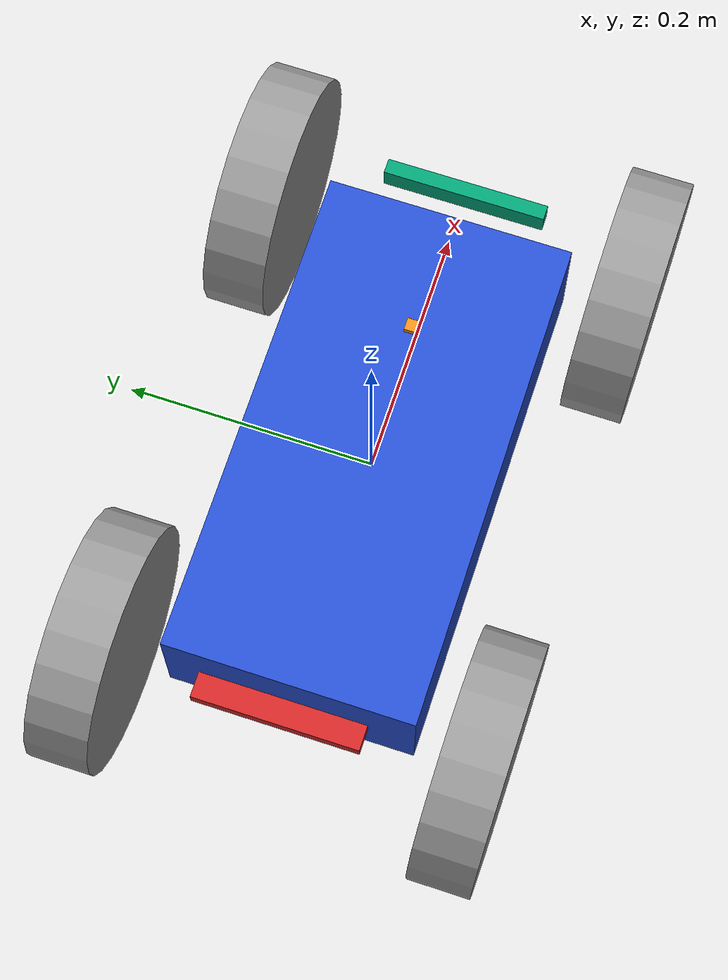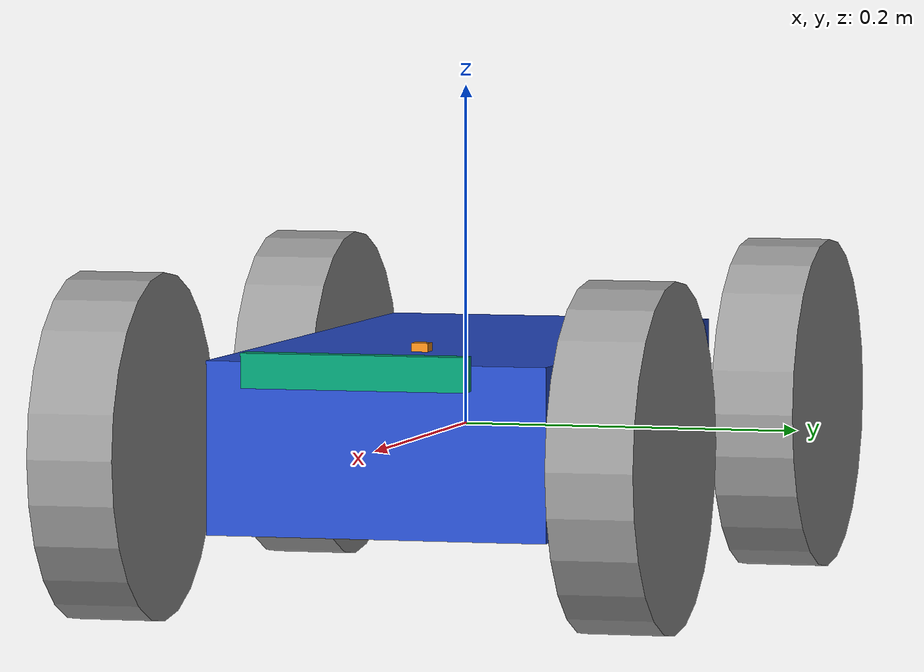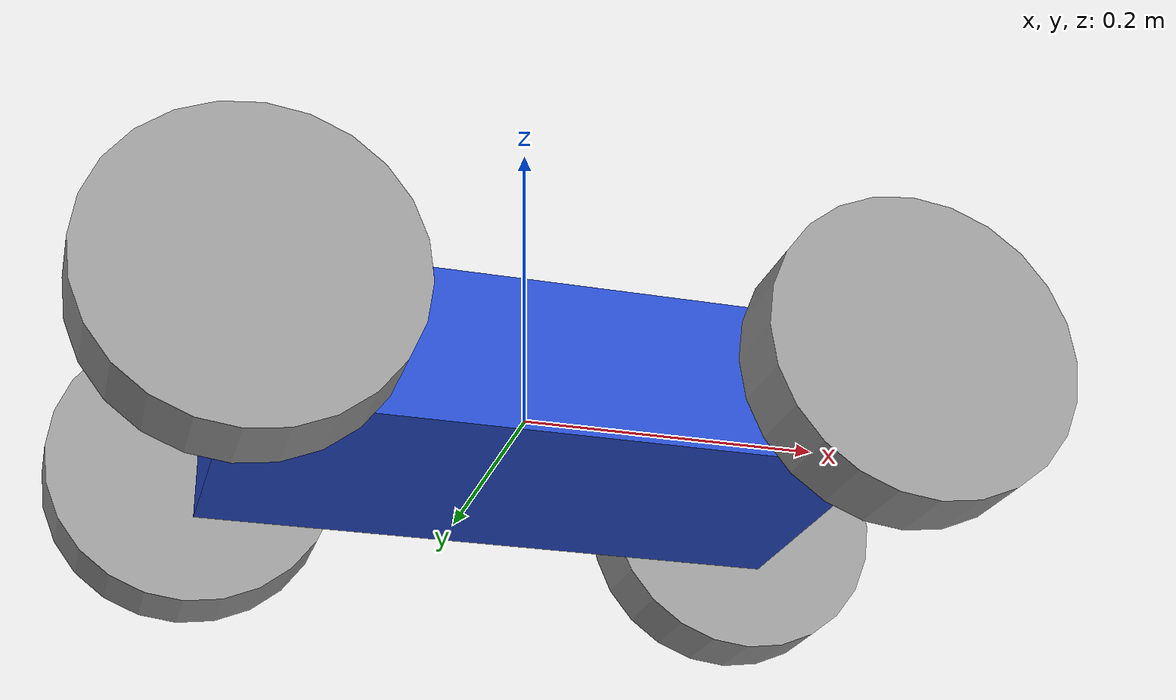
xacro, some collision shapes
<?xml version='1.0'?>

<robot name="fbrobot" xmlns:xacro="http://www.ros.org/wiki/xacro">

  <xacro:include filename="$(find fb_description)/urdf/fb.gazebo" />
  <xacro:include filename="$(find fb_description)/urdf/materials.xacro" />
  <!--xacro:include filename="$(find mybot_description)/urdf/macros.xacro" /-->
 <xacro:property name="r200_cam_rgb_px" value="0.05"/>
  <xacro:property name="r200_cam_rgb_py" value="0.018"/>
  <xacro:property name="r200_cam_rgb_pz" value="0.013"/>
  <xacro:property name="r200_cam_depth_offset" value="0.01"/>

  <link name='chassis'>
    <pose>0 0 0.1 0 0 0</pose>
    <inertial>
      <mass value="10.0"/>
      <origin xyz="0.0 0 0.1" rpy=" 0 0 0"/>
      <inertia
          ixx="0.5" ixy="0" ixz="0"
          iyy="1.0" iyz="0"
          izz="0.1"
      />
    </inertial>

    <collision name='collision'>
      <geometry>
        <box size=".4 .2 .1"/>
      </geometry>
    </collision>

    <visual name='chassis_visual'>
      <origin xyz="0 0 0" rpy=" 0 0 0"/>
      <geometry>
        <box size=".4 .2 .1"/>
      </geometry>
    </visual>

  </link>

  <link name="left_wheel">
    <!--origin xyz="0.1 0.13 0.1" rpy="0 1.5707 1.5707"/-->
    <collision name="collision">
      <origin xyz="0 0 0" rpy="0 1.5707 1.5707"/>
      <geometry>
        <cylinder radius="0.1" length="0.05"/>
      </geometry>
    </collision>
    <visual name="left_wheel_visual">
      <origin xyz="0 0 0" rpy="0 1.5707 1.5707"/>
      <geometry>
        <cylinder radius="0.1" length="0.05"/>
      </geometry>
    </visual>
    <inertial>
      <origin xyz="0 0 0" rpy="0 1.5707 1.5707"/>
      <mass value="5"/>
      <cylinder_inertia m="5" r="0.1" h="0.05"/>
      <inertia
        ixx="1.0" ixy="0.0" ixz="0.0"
        iyy="1.0" iyz="0.0"
        izz="1.0"/>
    </inertial>
  </link>
   <joint name="camera_joint" type="fixed">
    <origin xyz="0.22 -0.07 0.04" rpy="0 0 0"/>
    <parent link="chassis"/>
    <child link="camera_link"/>
</joint>
   <joint name="camera_back_joint" type="fixed">
    <origin xyz="-0.22 0.0 0.04" rpy="0 0 -3.14"/>
    <parent link="chassis"/>
    <child link="camera_back_link"/>
</joint>

  <link name="camera_link">
    <visual>
     <origin xyz="0 0 0" rpy="1.57 0 1.57"/>
      <geometry>
       <mesh filename="$(find fb_description)/urdf/r200.dae"/>
      </geometry>
    </visual>
    <collision>
      <origin xyz="0.003 0.065 0.007" rpy="0 0 0"/>
      <geometry>
        <box size="0.012 0.132 0.020"/>
      </geometry>
    </collision>

    <!-- This inertial field needs doesn't contain reliable data!! -->
  </link>
  <link name="camera_back_link">
    <visual>
     <origin xyz="0 0 0" rpy="1.57 1.57 1.57"/>
     <geometry>
        <box size="0.012 0.132 0.020"/>
      </geometry>
   </visual>
    <collision>
      <origin xyz="0.003 0.065 0.007" rpy="0 0 0"/>
      <geometry>
        <box size="0.012 0.132 0.020"/>
      </geometry>
    </collision>

    <!-- This inertial field needs doesn't contain reliable data!! -->
  </link>

  <joint name="camera_rgb_joint" type="fixed">
    <origin xyz="${r200_cam_rgb_px} ${r200_cam_rgb_py} ${r200_cam_rgb_pz}" rpy="0 0 0"/>
    <parent link="camera_link"/>
    <child link="camera_rgb_frame"/>
  </joint>
  <link name="camera_rgb_frame"/>

  <joint name="camera_rgb_optical_joint" type="fixed">
    <origin xyz="0 0 0" rpy="-1.57 0 -1.57"/>
    <parent link="camera_rgb_frame"/>
    <child link="camera_rgb_optical_frame"/>
  </joint>
  <link name="camera_rgb_optical_frame"/>

  <joint name="camera_depth_joint" type="fixed">
    <origin xyz="${r200_cam_rgb_px} ${r200_cam_rgb_py + r200_cam_depth_offset} ${r200_cam_rgb_pz}" rpy="0 0 0"/>
    <parent link="camera_link"/>
    <child link="camera_depth_frame"/>
  </joint>
  <link name="camera_depth_frame"/>

  <joint name="camera_depth_optical_joint" type="fixed">
    <origin xyz="0 0 0" rpy="-1.57 0 -1.57"/>
    <parent link="camera_depth_frame"/>
    <child link="camera_depth_optical_frame"/>
  </joint>
  <link name="camera_depth_optical_frame"/>

  <link name="imu_link">
    <collision>
      <origin xyz="0 0 0" rpy="0 0 0"/>
      <geometry>
        <box size="0.01 0.01 0.01"/>
      </geometry>
    </collision>
    <visual>
      <origin xyz="0 0 0" rpy="0 0 0"/>
      <geometry>
        <box size="0.01 0.01 0.01"/>
      </geometry>
    </visual>
    <inertial>
      <mass value="1e-5" />
      <origin xyz="0 0 0" rpy="0 0 0"/>
      <inertia ixx="1e-6" ixy="0" ixz="0" iyy="1e-6" iyz="0"      izz="1e-6" />
    </inertial>
</link>

  <link name="right_wheel">
    <!--origin xyz="0.1 -0.13 0.1" rpy="0 1.5707 1.5707"/-->
    <collision name="collision">
      <origin xyz="0 0 0" rpy="0 1.5707 1.5707"/>
      <geometry>
        <cylinder radius="0.1" length="0.05"/>
      </geometry>
    </collision>
    <visual name="right_wheel_visual">
      <origin xyz="0 0 0" rpy="0 1.5707 1.5707"/>
      <geometry>
        <cylinder radius="0.1" length="0.05"/>
      </geometry>
    </visual>
    <inertial>
      <origin xyz="0 0 0" rpy="0 1.5707 1.5707"/>
      <mass value="5"/>
      <cylinder_inertia m="5" r="0.1" h="0.05"/>
      <inertia
        ixx="1.0" ixy="0.0" ixz="0.0"
        iyy="1.0" iyz="0.0"
        izz="1.0"/>
    </inertial>
  </link>
 <link name="left_wheel_front">
    <!--origin xyz="0.1 -0.13 0.1" rpy="0 1.5707 1.5707"/-->
    <collision name="collision">
      <origin xyz="0 0 0" rpy="0 1.5707 1.5707"/>
      <geometry>
        <cylinder radius="0.1" length="0.05"/>
      </geometry>
    </collision>
    <visual name="left_wheel_front_visual">
      <origin xyz="0.0 0.0 0" rpy="0 1.5707 1.5707"/>
      <geometry>
        <cylinder radius="0.1" length="0.05"/>
      </geometry>
    </visual>
    <inertial>
      <origin xyz="0.0 0.0 0" rpy="0 1.5707 1.5707"/>
      <mass value="5"/>
      <cylinder_inertia m="5" r="0.1" h="0.05"/>
      <inertia
        ixx="1.0" ixy="0.0" ixz="0.0"
        iyy="1.0" iyz="0.0"
        izz="1.0"/>
    </inertial>
  </link>

<link name="right_wheel_front">
    <!--origin xyz="0.1 -0.13 0.1" rpy="0 1.5707 1.5707"/-->
    <collision name="collision">
      <origin xyz="0 0 0" rpy="0 1.5707 1.5707"/>
      <geometry>
        <cylinder radius="0.1" length="0.05"/>
      </geometry>
    </collision>
    <visual name="right_wheel_front_visual">
      <origin xyz="0.0 0.0 0" rpy="0 1.5707 1.5707"/>
      <geometry>
        <cylinder radius="0.1" length="0.05"/>
      </geometry>
    </visual>
    <inertial>
      <origin xyz="0.0 0.0 0" rpy="0 1.5707 1.5707"/>
      <mass value="5"/>
      <cylinder_inertia m="5" r="0.1" h="0.05"/>
      <inertia
        ixx="1.0" ixy="0.0" ixz="0.0"
        iyy="1.0" iyz="0.0"
        izz="1.0"/>
    </inertial>
  </link>
<joint name="imu_joint" type="fixed">
    <axis xyz="0 0 0" />
    <origin rpy="0 1.57 0" xyz="0.1 0 0.05" />
    <parent link="chassis"/>
    <child link="imu_link"/>
</joint>

 <joint type="continuous" name="left_wheel_hinge">
    <origin xyz="0.2 0.15 0" rpy="0 0 0"/>
    <child link="left_wheel"/>
    <parent link="chassis"/>
    <axis xyz="0 1 0" rpy="0 0 0"/>
    <limit effort="100" velocity="100"/>
    <joint_properties damping="0.0" friction="0.0"/>
  </joint>

  <joint type="continuous" name="right_wheel_hinge">
    <origin xyz="0.2 -0.15 0" rpy="0 0 0"/>
    <child link="right_wheel"/>
    <parent link="chassis"/>
    <axis xyz="0 1 0" rpy="0 0 0"/>
    <limit effort="100" velocity="100"/>
    <joint_properties damping="0.0" friction="0.0"/>
  </joint>

  <joint type="continuous" name="right_wheel_front_hinge">
    <origin xyz="-0.2 -0.15 0" rpy="0 0 0"/>
    <child link="right_wheel_front"/>
    <parent link="chassis"/>
    <axis xyz="0 1 0" rpy="0 0 0"/>
    <limit effort="100" velocity="100"/>
    <joint_properties damping="0.0" friction="0.0"/>
  </joint>

 <joint type="continuous" name="left_wheel_front_hinge">
    <origin xyz="-0.2 0.15 0" rpy="0 0 0"/>
    <child link="left_wheel_front"/>
    <parent link="chassis"/>
    <axis xyz="0 1 0" rpy="0 0 0"/>
    <limit effort="100" velocity="100"/>
    <joint_properties damping="0.0" friction="0.0"/>
  </joint>

</robot>
